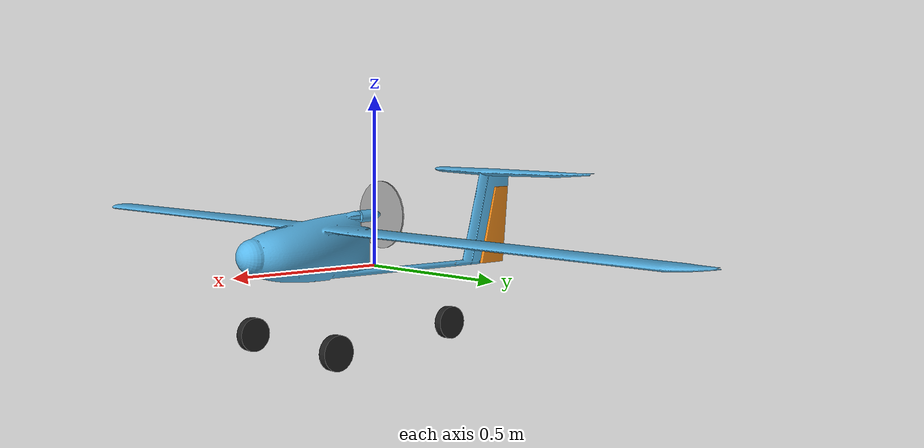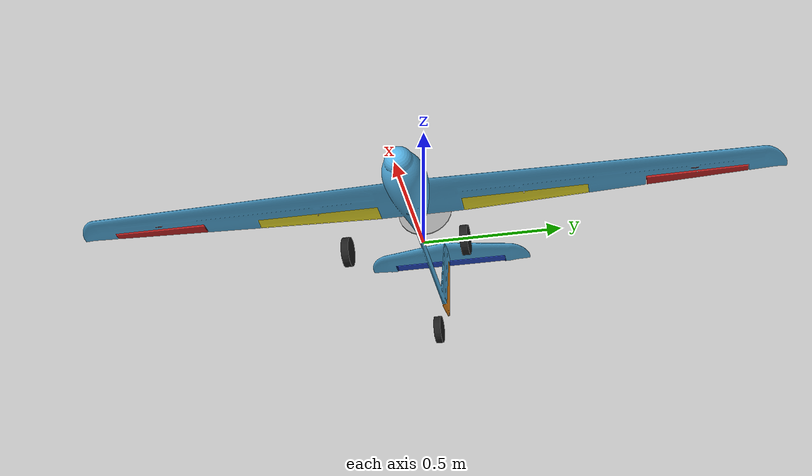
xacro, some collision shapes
<robot xmlns:xacro="http://ros.org/wiki/xacro" name="techpod">

  <!-- Global properties -->
  <xacro:property name="namespace" value="techpod"/>
  <xacro:property name="use_mesh" value="true"/>

  <!-- Component masses -->
  <xacro:property name="mass_fuselage" value="2.05"/> <!-- [kg] -->
  <xacro:property name="mass_aileron" value="0.1"/> <!-- [kg] -->
  <xacro:property name="mass_flap" value="0.1"/> <!-- [kg] -->
  <xacro:property name="mass_elevator" value="0.1"/> <!-- [kg] -->
  <xacro:property name="mass_rudder" value="0.1"/> <!-- [kg] -->
  <xacro:property name="mass_propeller" value="0.1"/> <!-- [kg] -->

  <!-- Main body properties -->
  <xacro:property name="body_length" value="1.088"/>
  <xacro:property name="body_width" value="2.591"/>
  <xacro:property name="body_height" value="0.303"/>
  <xacro:property name="body_color" value="Gray"/>
  <xacro:property name="body_mesh_file" value="package://tobas_description/meshes/techpod/techpod_body.dae"/>

  <!-- Aileron properties -->
  <xacro:property name="aileron_length" value="0.053"/>
  <xacro:property name="aileron_width" value="0.349"/>
  <xacro:property name="aileron_height" value="0.013"/>
  <xacro:property name="aileron_min_angle" value="-${20.0 * deg2rad}"/> <!-- [rad] -->
  <xacro:property name="aileron_max_angle" value="${20.0 * deg2rad}"/> <!-- [rad] -->
  <xacro:property name="aileron_max_velocity" value="10.0"/> <!-- [rad/s] -->
  <xacro:property name="aileron_max_effort" value="1e+6"/> <!-- [Nm] -->
  <xacro:property name="aileron_color" value="Red"/>
  <xacro:property name="aileron_left_mesh_file" value="package://tobas_description/meshes/techpod/techpod_aileron_left.dae"/>
  <xacro:property name="aileron_right_mesh_file" value="package://tobas_description/meshes/techpod/techpod_aileron_right.dae"/>

  <!-- Elevator properties -->
  <xacro:property name="elevator_length" value="0.051"/>
  <xacro:property name="elevator_width" value="0.457"/>
  <xacro:property name="elevator_height" value="0.012"/>
  <xacro:property name="elevator_min_angle" value="-${20.0 * deg2rad}"/> <!-- [rad] -->
  <xacro:property name="elevator_max_angle" value="${20.0 * deg2rad}"/> <!-- [rad] -->
  <xacro:property name="elevator_max_velocity" value="10.0"/> <!-- [rad/s] -->
  <xacro:property name="elevator_max_effort" value="1e+6"/> <!-- [Nm] -->
  <xacro:property name="elevator_color" value="Blue"/>
  <xacro:property name="elevator_mesh_file" value="package://tobas_description/meshes/techpod/techpod_elevator.dae"/>

  <!-- Flap properties -->
  <xacro:property name="flap_length" value="0.076"/>
  <xacro:property name="flap_width" value="0.459"/>
  <xacro:property name="flap_height" value="0.016"/>
  <xacro:property name="flap_min_angle" value="-${20.0 * deg2rad}"/> <!-- [rad] -->
  <xacro:property name="flap_max_angle" value="${20.0 * deg2rad}"/> <!-- [rad] -->
  <xacro:property name="flap_max_velocity" value="10.0"/> <!-- [rad/s] -->
  <xacro:property name="flap_max_effort" value="1e+6"/> <!-- [Nm] -->
  <xacro:property name="flap_color" value="Yellow"/>
  <xacro:property name="flap_left_mesh_file" value="package://tobas_description/meshes/techpod/techpod_flap_left.dae"/>
  <xacro:property name="flap_right_mesh_file" value="package://tobas_description/meshes/techpod/techpod_flap_right.dae"/>

  <!-- Rudder properties -->
  <xacro:property name="rudder_length" value="0.129"/>
  <xacro:property name="rudder_width" value="0.018"/>
  <xacro:property name="rudder_height" value="0.241"/>
  <xacro:property name="rudder_min_angle" value="-${20.0 * deg2rad}"/>
  <xacro:property name="rudder_max_angle" value="${20.0 * deg2rad}"/>
  <xacro:property name="rudder_max_velocity" value="10.0"/>
  <xacro:property name="rudder_max_effort" value="1e+6"/>
  <xacro:property name="rudder_color" value="Orange"/>
  <xacro:property name="rudder_mesh_file" value="package://tobas_description/meshes/techpod/techpod_rudder.dae"/>

  <!-- Propeller properties -->
  <xacro:property name="propeller_direction" value="cw"/>
  <xacro:property name="propeller_radius" value="0.1"/>
  <xacro:property name="propeller_height" value="0.003"/>
  <xacro:property name="propeller_color" value="Gray"/>
  <xacro:property name="propeller_mesh_file" value="package://tobas_description/meshes/propeller_${propeller_direction}.dae"/>

  <!-- Wheel properties -->
  <xacro:property name="wheel_mass" value="0.1"/>
  <xacro:property name="wheel_radius" value="0.05"/>
  <xacro:property name="wheel_height" value="0.025"/>
  <xacro:property name="wheel_color" value="Black"/>

  <!-- Inertia of the main body -->
  <xacro:property name="body_inertia">
    <inertia ixx="0.16632" ixy="0.0" ixz="0.0755" iyy="0.3899" iyz="0.0" izz="0.5243"/>
  </xacro:property>

  <!-- Inertia of the aileron, assuming it is a cuboid -->
  <xacro:property name="aileron_inertia">
    <xacro:box_inertia x="${aileron_length}" y="${aileron_width}" z="${aileron_height}" mass="${mass_aileron}"/>
  </xacro:property>

  <!-- Inertia of the elevator, assuming it is a cuboid -->
  <xacro:property name="elevator_inertia">
    <xacro:box_inertia x="${elevator_length}" y="${elevator_width}" z="${elevator_height}" mass="${mass_elevator}"/>
  </xacro:property>

  <!-- Inertia of the flap, assuming it is a cuboid -->
  <xacro:property name="flap_inertia">
    <xacro:box_inertia x="${flap_length}" y="${flap_width}" z="${flap_height}" mass="${mass_flap}"/>
  </xacro:property>

  <!-- Inertia of the rudder, assuming it is a cuboid -->
  <xacro:property name="rudder_inertia">
    <xacro:box_inertia x="${rudder_length}" y="${rudder_width}" z="${rudder_height}" mass="${mass_rudder}"/>
  </xacro:property>

  <!-- Inertia of the propeller, assuming it is a cylinder -->
  <xacro:property name="propeller_inertia">
    <xacro:cylinder_inertia radius="${propeller_radius}" length="${propeller_height}" mass="${mass_propeller}"/>
  </xacro:property>

  <!-- Inertia of the wheels, assuming it is a cylinder -->
  <xacro:property name="wheel_inertia">
    <xacro:cylinder_inertia radius="${wheel_radius}" length="${wheel_height}" mass="${wheel_mass}"/>
  </xacro:property>

  <!-- Included URDF Files -->
  <xacro:include filename="$(find tobas_description)/urdf/components/fixed_wing_base.xacro"/>

  <xacro:fixed_wing_base_macro
    robot_namespace="${namespace}"
    mass="${mass_fuselage}"
    length="${body_length}"
    width="${body_width}"
    height="${body_height}"
    color="${body_color}"
    use_mesh_file="${use_mesh}"
    mesh_file="${body_mesh_file}">
    <origin xyz="0 0 0" rpy="0 0 0"/>
    <xacro:insert_block name="body_inertia"/>
  </xacro:fixed_wing_base_macro>

  <!-- Instantiate the wheels -->
  <xacro:wheel
    robot_namespace="${namespace}"
    suffix="left"
    parent="${namespace}/base_link"
    mass="${wheel_mass}"
    height="${wheel_height}"
    radius="${wheel_radius}"
    color="${wheel_color}">
		<origin xyz="0.3 0.2 -0.2" rpy="${pi / 2} 0 0"/>
    <xacro:insert_block name="wheel_inertia"/>
  </xacro:wheel>

  <xacro:wheel
    robot_namespace="${namespace}"
    suffix="right"
    parent="${namespace}/base_link"
    mass="${wheel_mass}"
    height="${wheel_height}"
    radius="${wheel_radius}"
    color="${wheel_color}">
		<origin xyz="0.3 -0.2 -0.2" rpy="${pi / 2} 0 0"/>
    <xacro:insert_block name="wheel_inertia"/>
  </xacro:wheel>

  <xacro:wheel
    robot_namespace="${namespace}"
    suffix="rear"
    parent="${namespace}/base_link"
    mass="${wheel_mass}"
    height="${wheel_height}"
    radius="${wheel_radius}"
    color="${wheel_color}">
		<origin xyz="-0.3 0 -0.2" rpy="${pi / 2} 0 0"/>
    <xacro:insert_block name="wheel_inertia"/>
  </xacro:wheel>

  <!-- Instantiate the ailerons -->
  <xacro:control_surface
    robot_namespace="${namespace}"
    surface_name="aileron_left"
    parent="${namespace}/base_link"
    mass_surface="${mass_aileron}"
    min_angle="${aileron_min_angle}"
    max_angle="${aileron_max_angle}"
    max_velocity="${aileron_max_velocity}"
    max_effort="${aileron_max_effort}"
    color="${aileron_color}"
    use_mesh_file="${use_mesh}"
    mesh_file="${aileron_left_mesh_file}"
    surface_length="${aileron_length}"
    surface_width="${aileron_width}"
    surface_height="${aileron_height}">
    <axis xyz="0 -1 0"/>   <!-- Joint axis -->
    <origin xyz="0.1095 0.99245 0.115" rpy="0 0 0"/>   <!-- Joint origin -->
    <origin xyz="0 0 0" rpy="0 0 0"/>   <!-- Link origin -->
    <xacro:insert_block name="aileron_inertia"/>
  </xacro:control_surface>

  <xacro:control_surface
    robot_namespace="${namespace}"
    surface_name="aileron_right"
    parent="${namespace}/base_link"
    mass_surface="${mass_aileron}"
    min_angle="${aileron_min_angle}"
    max_angle="${aileron_max_angle}"
    max_velocity="${aileron_max_velocity}"
    max_effort="${aileron_max_effort}"
    color="${aileron_color}"
    use_mesh_file="${use_mesh}"
    mesh_file="${aileron_right_mesh_file}"
    surface_length="${aileron_length}"
    surface_width="${aileron_width}"
    surface_height="${aileron_height}">
    <axis xyz="0 1 0"/>   <!-- Joint axis -->
    <origin xyz="0.1095 -0.99245 0.115" rpy="0 0 0"/>   <!-- Joint origin -->
    <origin xyz="0 0 0" rpy="0 0 0"/>   <!-- Link origin -->
    <xacro:insert_block name="aileron_inertia"/>
  </xacro:control_surface>

  <!-- Instantiate the elevator(s) -->
  <xacro:control_surface
    robot_namespace="${namespace}"
    surface_name="elevator"
    parent="${namespace}/base_link"
    mass_surface="${mass_elevator}"
    min_angle="${elevator_min_angle}"
    max_angle="${elevator_max_angle}"
    max_velocity="${elevator_max_velocity}"
    max_effort="${elevator_max_effort}"
    color="${elevator_color}"
    use_mesh_file="${use_mesh}"
    mesh_file="${elevator_mesh_file}"
    surface_length="${elevator_length}"
    surface_width="${elevator_width}"
    surface_height="${elevator_height}">
    <axis xyz="0 -1 0"/>   <!-- Joint axis -->
    <origin xyz="-0.555 0 0.26" rpy="0 0 0"/>   <!-- Joint origin -->
    <origin xyz="0 0 0" rpy="0 0 0"/>   <!-- Link origin -->
    <xacro:insert_block name="elevator_inertia"/>
  </xacro:control_surface>

  <!-- Instantiate the rudder -->
  <xacro:control_surface
    robot_namespace="${namespace}"
    surface_name="rudder"
    parent="${namespace}/base_link"
    mass_surface="${mass_rudder}"
    min_angle="${rudder_min_angle}"
    max_angle="${rudder_max_angle}"
    max_velocity="${rudder_max_velocity}"
    max_effort="${rudder_max_effort}"
    color="${rudder_color}"
    use_mesh_file="${use_mesh}"
    mesh_file="${rudder_mesh_file}"
    surface_length="${rudder_length}"
    surface_width="${rudder_width}"
    surface_height="${rudder_height}">
    <axis xyz="0 0 1"/>   <!-- Joint axis -->
    <origin xyz="-0.428 0 0" rpy="0 -0.25 0"/>   <!-- Joint origin -->
    <origin xyz="0 0 0" rpy="0 0.25 0"/>   <!-- Link origin -->
    <xacro:insert_block name="rudder_inertia"/>
  </xacro:control_surface>

  <!-- Instantiate the propeller -->
  <xacro:propeller
    robot_namespace="${namespace}"
    suffix="0"
    parent="${namespace}/base_link"
    mass_propeller="${mass_propeller}"
    propeller_radius="${propeller_radius}"
    color="${propeller_color}"
    use_mesh_file="${use_mesh}"
    mesh_file="${propeller_mesh_file}">
    <origin xyz="-0.025 0 0.15" rpy="0 ${pi / 2} 0"/>
    <xacro:insert_block name="propeller_inertia"/>
  </xacro:propeller>

  <!-- Instantiate the flaps -->
  <xacro:control_surface
    robot_namespace="${namespace}"
    surface_name="flap_left"
    parent="${namespace}/base_link"
    mass_surface="${mass_flap}"
    min_angle="${flap_min_angle}"
    max_angle="${flap_max_angle}"
    max_velocity="${flap_max_velocity}"
    max_effort="${flap_max_effort}"
    color="${flap_color}"
    use_mesh_file="${use_mesh}"
    mesh_file="${flap_left_mesh_file}"
    surface_length="${flap_length}"
    surface_width="${flap_width}"
    surface_height="${flap_height}">
    <axis xyz="0 -1 0"/>   <!-- Joint axis -->
    <origin xyz="0.101 0.382 0.1185" rpy="0 0 0"/>   <!-- Joint origin -->
    <origin xyz="0 0 0" rpy="0 0 0"/>   <!-- Link origin -->
    <xacro:insert_block name="flap_inertia"/>
  </xacro:control_surface>

  <xacro:control_surface
    robot_namespace="${namespace}"
    surface_name="flap_right"
    parent="${namespace}/base_link"
    mass_surface="${mass_flap}"
    min_angle="${flap_min_angle}"
    max_angle="${flap_max_angle}"
    max_velocity="${flap_max_velocity}"
    max_effort="${flap_max_effort}"
    color="${flap_color}"
    use_mesh_file="${use_mesh}"
    mesh_file="${flap_right_mesh_file}"
    surface_length="${flap_length}"
    surface_width="${flap_width}"
    surface_height="${flap_height}">
    <axis xyz="0 1 0"/>   <!-- Joint axis -->
    <origin xyz="0.101 -0.382 0.1185" rpy="0 0 0"/>   <!-- Joint origin -->
    <origin xyz="0 0 0" rpy="0 0 0"/>   <!-- Link origin -->
    <xacro:insert_block name="flap_inertia"/>
  </xacro:control_surface>

</robot>

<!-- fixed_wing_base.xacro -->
<robot xmlns:xacro="http://ros.org/wiki/xacro">

  <xacro:include filename="$(find tobas_description)/urdf/components/common.xacro"/>

  <!-- Fixed-wing main body link -->
  <xacro:macro name="fixed_wing_base_macro" params="
      robot_namespace
      mass
      length
      width
      height
      color
      use_mesh_file
      mesh_file
      *origin
      *inertia">
    <link name="${robot_namespace}/base_link"></link>

    <joint name="${robot_namespace}/base_joint" type="fixed">
      <xacro:insert_block name="origin"/>
      <parent link="${robot_namespace}/base_link"/>
      <child link="${robot_namespace}/base_link_inertia"/>
    </joint>

    <link name="${robot_namespace}/base_link_inertia">
      <inertial>
        <mass value="${mass}"/>
        <origin xyz="0 0 0" rpy="0 0 0"/>
        <xacro:insert_block name="inertia"/>
      </inertial>
      <visual>
        <origin xyz="0 0 0" rpy="0 0 0"/>
        <geometry>
          <xacro:if value="${use_mesh_file}">
            <mesh filename="${mesh_file}" scale="1 1 1"/>
          </xacro:if>
          <xacro:unless value="${use_mesh_file}">
            <box size="${length} ${width} ${height}"/>
          </xacro:unless>
        </geometry>
      </visual>
      <collision>
        <origin xyz="0 0 0" rpy="0 0 0"/>
        <geometry>
          <box size="${length} ${width} ${height}"/>
        </geometry>
      </collision>
    </link>

    <gazebo reference="${robot_namespace}/base_link">
      <material>Gazebo/${color}</material>
    </gazebo>

  </xacro:macro>

  <!-- Control surface joint and link -->
  <xacro:macro name="control_surface" params="
      robot_namespace
      surface_name
      parent
      mass_surface
      min_angle
      max_angle
      max_velocity
      max_effort
      color
      use_mesh_file
      mesh_file
      surface_length
      surface_width
      surface_height
      *axis
      *joint_origin
      *link_origin
      *inertia">
    <joint name="${robot_namespace}/${surface_name}_joint" type="revolute">
      <xacro:insert_block name="joint_origin"/>
      <xacro:insert_block name="axis"/>
      <parent link="${parent}"/>
      <child link="${robot_namespace}/${surface_name}"/>
      <limit lower="${min_angle}" upper="${max_angle}" velocity="${max_velocity}" effort="${max_effort}"/>
    </joint>

    <link name="${robot_namespace}/${surface_name}">
      <inertial>
        <xacro:insert_block name="link_origin"/>
        <mass value="${mass_surface}"/>
        <xacro:insert_block name="inertia"/>
      </inertial>
      <visual>
        <xacro:insert_block name="link_origin"/>
        <geometry>
          <xacro:if value="${use_mesh_file}">
            <mesh filename="${mesh_file}" scale="1 1 1"/>
          </xacro:if>
          <xacro:unless value="${use_mesh_file}">
            <box size="${surface_length} ${surface_width} ${surface_height}"/>
          </xacro:unless>
        </geometry>
      </visual>
      <collision>
        <xacro:insert_block name="link_origin"/>
        <geometry>
          <box size="${surface_length} ${surface_width} ${surface_height}"/>
        </geometry>
      </collision>
    </link>

    <gazebo reference="${robot_namespace}/${surface_name}">
      <material>Gazebo/${color}</material>
    </gazebo>
  </xacro:macro>

  <!-- Propeller joint and link -->
  <xacro:macro name="propeller" params="
      robot_namespace
      suffix
      parent
      mass_propeller
      propeller_radius
      color
      use_mesh_file
      mesh_file
      *origin
      *inertia">
    <joint name="${robot_namespace}/propeller_${suffix}_joint" type="continuous">
      <xacro:insert_block name="origin"/>
      <axis xyz="0 0 1"/>
      <parent link="${parent}"/>
      <child link="${robot_namespace}/propeller_${suffix}"/>
    </joint>

    <link name="${robot_namespace}/propeller_${suffix}">
      <inertial>
        <mass value="${mass_propeller}"/>
        <xacro:insert_block name="inertia"/>
      </inertial>
      <visual>
        <geometry>
          <xacro:if value="${use_mesh_file}">
            <mesh filename="${mesh_file}" scale="${propeller_radius} ${propeller_radius} ${propeller_radius}"/>
          </xacro:if>
          <xacro:unless value="${use_mesh_file}">
            <cylinder length="0.005" radius="${propeller_radius}"/>
          </xacro:unless>
        </geometry>
      </visual>
      <collision>
        <geometry>
          <cylinder length="0.005" radius="${propeller_radius}"/>
        </geometry>
      </collision>
    </link>

    <gazebo reference="${robot_namespace}/propeller_${suffix}">
      <material>Gazebo/${color}</material>
    </gazebo>
  </xacro:macro>

  <!-- Wheel joint and link -->
  <xacro:macro name="wheel" params="
      robot_namespace
      suffix
      parent
      mass
      height
      radius
      color
      *origin
      *inertia">
    <joint name="techpod/wheel_${suffix}_joint" type="continuous">
      <parent link="${parent}"/>
      <child link="techpod/wheel_${suffix}"/>
      <xacro:insert_block name="origin"/>
      <axis xyz="0 0 1"/>
    </joint>

    <link name="techpod/wheel_${suffix}">
      <inertial>
        <mass value="${mass}"/>
        <xacro:insert_block name="inertia"/>
      </inertial>
      <visual>
        <geometry>
          <cylinder length="${height}" radius="${radius}"/>
        </geometry>
      </visual>
      <collision>
        <geometry>
          <cylinder length="${height}" radius="${radius}"/>
        </geometry>
      </collision>
    </link>

    <gazebo reference="techpod/wheel_${suffix}">
      <material>Gazebo/${color}</material>
    </gazebo>
  </xacro:macro>

</robot>

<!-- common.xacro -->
<robot xmlns:xacro="http://ros.org/wiki/xacro">

  <!-- Constants -->
  <xacro:property name="sqrt2" value="1.4142135623730951"/>
  <xacro:property name="sqrt3" value="1.73205080757"/>
  <xacro:property name="sin30" value="0.5"/>
  <xacro:property name="cos30" value="${sqrt3 / 2}"/>
  <xacro:property name="sin45" value="${1 / sqrt2}"/>
  <xacro:property name="cos45" value="${sin45}"/>
  <xacro:property name="sin60" value="${cos30}"/>
  <xacro:property name="cos60" value="${sin30}"/>
  <xacro:property name="deg2rad" value="${pi / 180}"/>
  <xacro:property name="rad2deg" value="${180 / pi}"/>
  <xacro:property name="inch2meter" value="0.0254"/>

  <!-- Colors -->
  <xacro:property name="black">
    <material name="black">
      <color rgba="0 0 0 1"/>
    </material>
  </xacro:property>
  <xacro:property name="white">
    <material name="white">
      <color rgba="1 1 1 1"/>
    </material>
  </xacro:property>
  <xacro:property name="gray">
    <material name="gray">
      <color rgba="0.5 0.5 0.5 1"/>
    </material>
  </xacro:property>
  <xacro:property name="red">
    <material name="red">
      <color rgba="1 0 0 1"/>
    </material>
  </xacro:property>
  <xacro:property name="green">
    <material name="green">
      <color rgba="0 1 0 1"/>
    </material>
  </xacro:property>
  <xacro:property name="blue">
    <material name="blue">
      <color rgba="0 0 1 1"/>
    </material>
  </xacro:property>
  <xacro:property name="yellow">
    <material name="yellow">
      <color rgba="1 1 0 1"/>
    </material>
  </xacro:property>
  <xacro:property name="orange">
    <material name="orange">
      <color rgba="${255/255} ${108/255} ${10/255} 1"/>
    </material>
  </xacro:property>
  <xacro:property name="brown">
    <material name="brown">
      <color rgba="${222/255} ${207/255} ${195/255} 1"/>
    </material>
  </xacro:property>

  <!-- Collisions -->
  <xacro:macro name="hexagonal_prism_collision" params="side height x0 y0 z0">
    <collision>
      <origin xyz="${x0} ${y0} ${z0}" rpy="0 0 0"/>
      <geometry>
        <box size="${sqrt3 * side} ${side} ${height}"/>
      </geometry>
    </collision>
    <collision>
      <origin xyz="${x0} ${y0} ${z0}" rpy="0 0 ${60*deg2rad}"/>
      <geometry>
        <box size="${sqrt3 * side} ${side} ${height}"/>
      </geometry>
    </collision>
    <collision>
      <origin xyz="${x0} ${y0} ${z0}" rpy="0 0 ${-60*deg2rad}"/>
      <geometry>
        <box size="${sqrt3 * side} ${side} ${height}"/>
      </geometry>
    </collision>
  </xacro:macro>

  <!-- Inertia wrt. CoM of primitive shapes -->
  <xacro:macro name="box_inertia" params="x y z mass">
    <inertia ixx="${mass * (y*y + z*z) / 12}" ixy="0.0" ixz="0.0" iyy="${mass * (x*x + z*z) / 12}" iyz="0.0" izz="${mass * (x*x + y*y) / 12}"/>
  </xacro:macro>
  <xacro:macro name="cylinder_inertia" params="radius length mass">
    <inertia ixx="${mass*radius*radius/4 + mass*length*length/12}" ixy="0.0" ixz="0.0" iyy="${mass*radius*radius/4 + mass*length*length/12}" iyz="0.0" izz="${mass*radius*radius/2}"/>
  </xacro:macro>
  <xacro:macro name="sphere_inertia" params="radius mass">
    <inertia ixx="${0.4 * mass * radius*radius}" ixy="0.0" ixz="0.0" iyy="${0.4 * mass * radius*radius}" iyz="0.0" izz="${0.4 * mass * radius*radius}"/>
  </xacro:macro>

  <!-- Macro for the inertial properties of a box -->
  <xacro:macro name="box_inertial" params="x y z mass *origin">
    <inertial>
      <mass value="${mass}"/>
      <xacro:insert_block name="origin"/>
      <xacro:box_inertia x="${x}" y="${y}" z="${z}" mass="${mass}"/>
    </inertial>
  </xacro:macro>

</robot>
